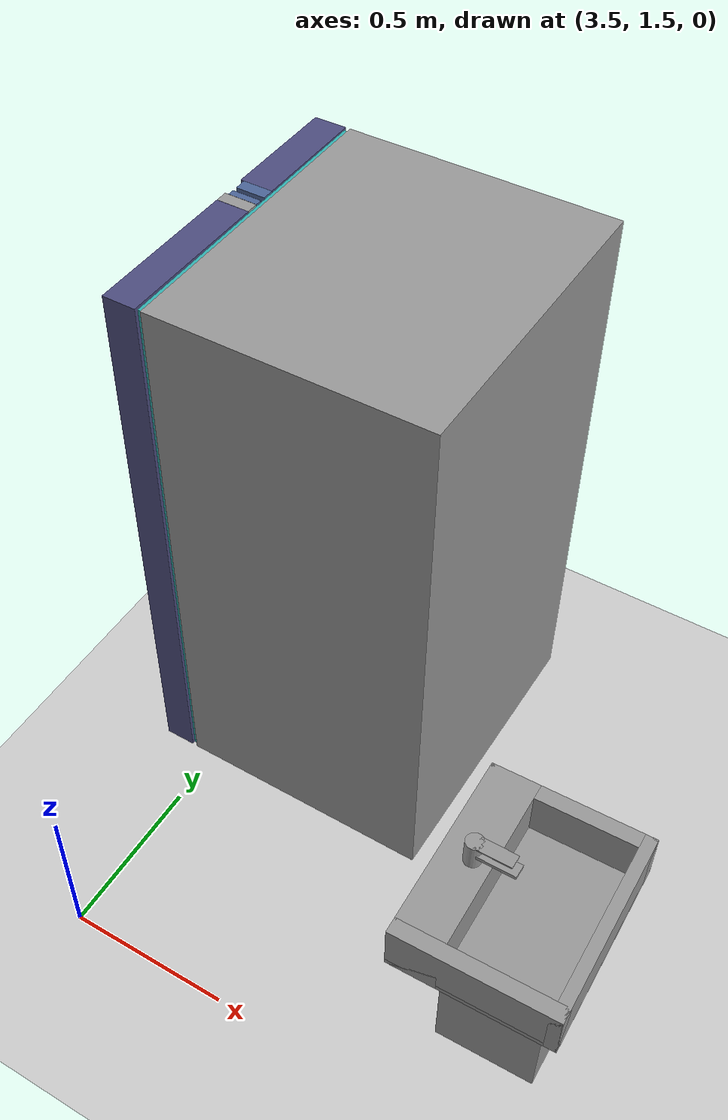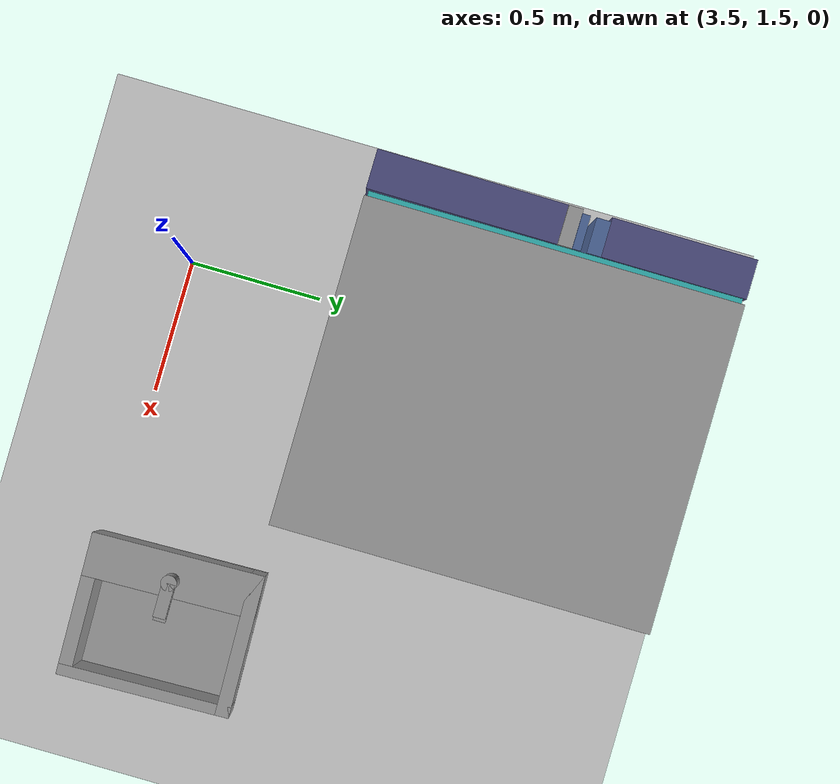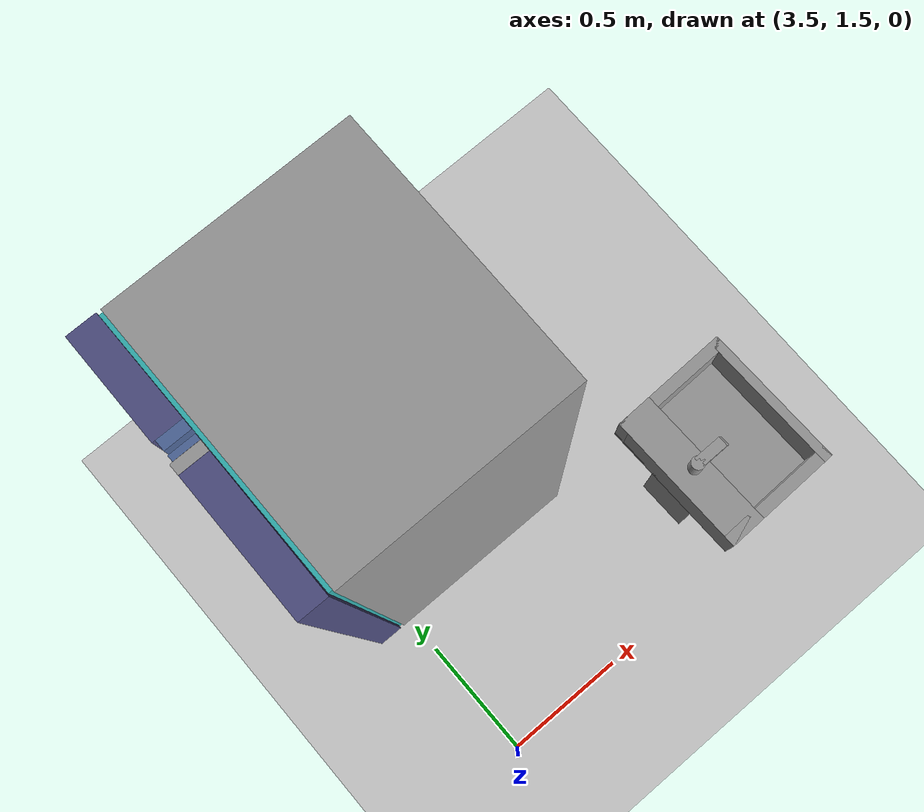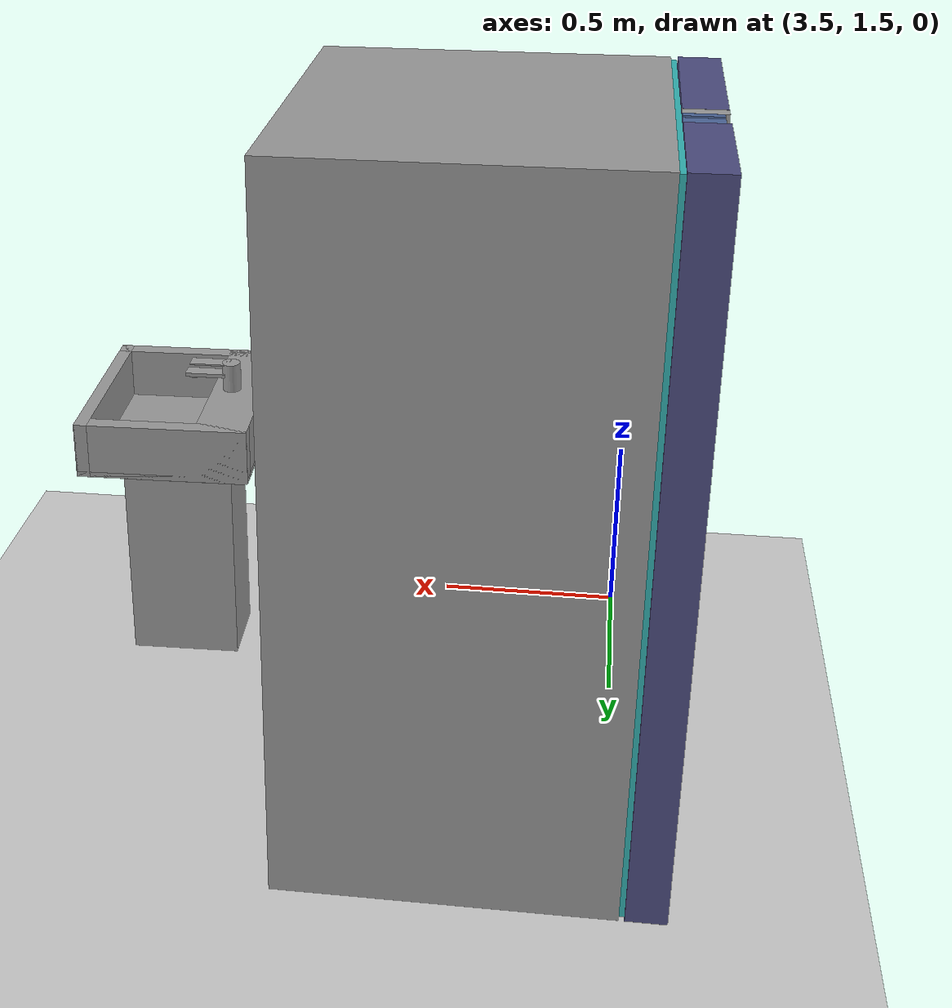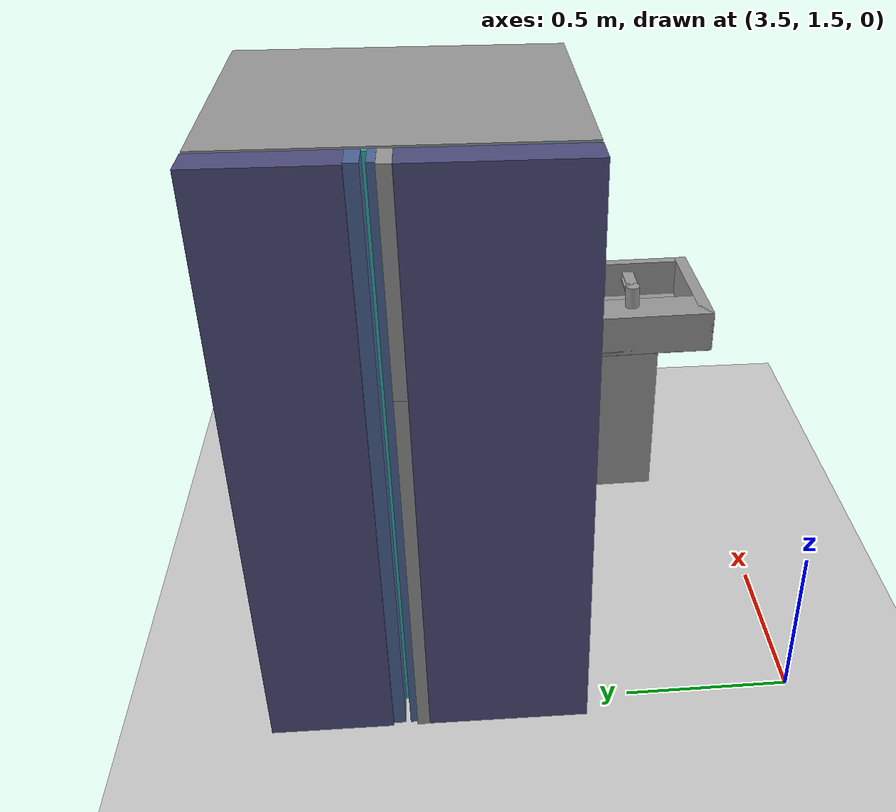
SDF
<sdf version="1.6">
 <world name="default">
  <model name="ground_plane">
   <static>1</static>
   <link name="link">
    <collision name="collision">
     <geometry><plane><normal>0 0 1</normal><size>100 100</size></plane></geometry>
     <surface><friction><ode><mu>100</mu><mu2>50</mu2></ode></friction></surface>
    </collision>
    <visual name="visual">
     <cast_shadows>0</cast_shadows>
     <geometry><plane><normal>0 0 1</normal><size>100 100</size></plane></geometry>
     <material>
      <script><uri>file://media/materials/scripts/gazebo.material</uri><name>Gazebo/Grey</name></script>
     </material>
    </visual>
   </link>
  </model>
  <model name="refrigerator">
   <link name="link_0">
    <pose>0 0.268333 0 0 -0 0</pose>
    <visual name="visual">
     <geometry><box><size>0.915 0.792 1.71</size></box></geometry>
     <material>
      <lighting>1</lighting>
      <script><uri>file://media/materials/scripts/gazebo.material</uri><name>Gazebo/Grey</name></script>
      <ambient>0.3 0.3 0.3 1</ambient>
      <diffuse>0.7 0.7 0.7 1</diffuse>
      <specular>0.01 0.01 0.01 1</specular>
      <emissive>0 0 0 1</emissive>
      <shader type="vertex"><normal_map>__default__</normal_map></shader>
     </material>
    </visual>
    <collision name="collision">
     <geometry><box><size>0.915 0.792 1.71</size></box></geometry>
     <surface>
      <friction>
       <ode><mu>1</mu><mu2>1</mu2><fdir1>0 0 0</fdir1><slip1>0</slip1><slip2>0</slip2></ode>
       <torsional>
        <coefficient>1</coefficient>
        <patch_radius>0</patch_radius>
        <surface_radius>0</surface_radius>
        <use_patch_radius>1</use_patch_radius>
        <ode><slip>0</slip></ode>
       </torsional>
      </friction>
      <bounce><restitution_coefficient>0</restitution_coefficient><threshold>1e+06</threshold></bounce>
      <contact>
       <collide_without_contact>0</collide_without_contact>
       <collide_without_contact_bitmask>1</collide_without_contact_bitmask>
       <collide_bitmask>1</collide_bitmask>
       <ode>
        <soft_cfm>0</soft_cfm>
        <soft_erp>0.2</soft_erp>
        <kp>1e+13</kp>
        <kd>1</kd>
        <max_vel>0.01</max_vel>
        <min_depth>0</min_depth>
       </ode>
       <bullet>
        <split_impulse>1</split_impulse>
        <split_impulse_penetration_threshold>-0.01</split_impulse_penetration_threshold>
        <soft_cfm>0</soft_cfm>
        <soft_erp>0.2</soft_erp>
        <kp>1e+13</kp>
        <kd>1</kd>
       </bullet>
      </contact>
     </surface>
    </collision>
    <inertial>
     <inertia><ixx>1</ixx><ixy>0</ixy><ixz>0</ixz><iyy>1</iyy><iyz>0</iyz><izz>1</izz></inertia>
     <mass>1</mass>
    </inertial>
   </link>
   <link name="link_0_0">
    <pose>-0.28263 -0.188543 0 0 0 -0.002148</pose>
    <visual name="visual">
     <geometry><box><size>0.35 0.095 1.71</size></box></geometry>
     <material>
      <lighting>1</lighting>
      <script><uri>file://media/materials/scripts/gazebo.material</uri><name>Gazebo/Grey</name></script>
      <ambient>0.3 0.3 0.5 1</ambient>
      <diffuse>0.7 0.7 0.7 1</diffuse>
      <specular>0.01 0.01 0.01 1</specular>
      <emissive>0 0 0 1</emissive>
      <shader type="vertex"><normal_map>__default__</normal_map></shader>
     </material>
    </visual>
    <collision name="collision">
     <geometry><box><size>0.35 0.095 1.71</size></box></geometry>
     <surface>
      <friction>
       <ode><mu>1</mu><mu2>1</mu2><fdir1>0 0 0</fdir1><slip1>0</slip1><slip2>0</slip2></ode>
       <torsional>
        <coefficient>1</coefficient>
        <patch_radius>0</patch_radius>
        <surface_radius>0</surface_radius>
        <use_patch_radius>1</use_patch_radius>
        <ode><slip>0</slip></ode>
       </torsional>
      </friction>
      <bounce><restitution_coefficient>0</restitution_coefficient><threshold>1e+06</threshold></bounce>
      <contact>
       <collide_without_contact>0</collide_without_contact>
       <collide_without_contact_bitmask>1</collide_without_contact_bitmask>
       <collide_bitmask>1</collide_bitmask>
       <ode>
        <soft_cfm>0</soft_cfm>
        <soft_erp>0.2</soft_erp>
        <kp>1e+13</kp>
        <kd>1</kd>
        <max_vel>0.01</max_vel>
        <min_depth>0</min_depth>
       </ode>
       <bullet>
        <split_impulse>1</split_impulse>
        <split_impulse_penetration_threshold>-0.01</split_impulse_penetration_threshold>
        <soft_cfm>0</soft_cfm>
        <soft_erp>0.2</soft_erp>
        <kp>1e+13</kp>
        <kd>1</kd>
       </bullet>
      </contact>
     </surface>
    </collision>
    <inertial>
     <inertia><ixx>1</ixx><ixy>0</ixy><ixz>0</ixz><iyy>1</iyy><iyz>0</iyz><izz>1</izz></inertia>
     <mass>1</mass>
    </inertial>
   </link>
   <link name="link_0_0_clone">
    <pose>0.227291 -0.190132 0 0 0 -0.004296</pose>
    <visual name="visual_0">
     <geometry><box><size>0.46 0.095 1.71</size></box></geometry>
     <material>
      <lighting>1</lighting>
      <script><uri>file://media/materials/scripts/gazebo.material</uri><name>Gazebo/Grey</name></script>
      <ambient>0.3 0.3 0.5 1</ambient>
      <diffuse>0.7 0.7 0.7 1</diffuse>
      <specular>0.01 0.01 0.01 1</specular>
      <emissive>0 0 0 1</emissive>
      <shader type="vertex"><normal_map>__default__</normal_map></shader>
     </material>
    </visual>
    <collision name="collision">
     <geometry><box><size>0.46 0.095 1.71</size></box></geometry>
     <surface>
      <friction>
       <ode><mu>1</mu><mu2>1</mu2><fdir1>0 0 0</fdir1><slip1>0</slip1><slip2>0</slip2></ode>
       <torsional>
        <coefficient>1</coefficient>
        <patch_radius>0</patch_radius>
        <surface_radius>0</surface_radius>
        <use_patch_radius>1</use_patch_radius>
        <ode><slip>0</slip></ode>
       </torsional>
      </friction>
      <bounce><restitution_coefficient>0</restitution_coefficient><threshold>1e+06</threshold></bounce>
      <contact>
       <collide_without_contact>0</collide_without_contact>
       <collide_without_contact_bitmask>1</collide_without_contact_bitmask>
       <collide_bitmask>1</collide_bitmask>
       <ode>
        <soft_cfm>0</soft_cfm>
        <soft_erp>0.2</soft_erp>
        <kp>1e+13</kp>
        <kd>1</kd>
        <max_vel>0.01</max_vel>
        <min_depth>0</min_depth>
       </ode>
       <bullet>
        <split_impulse>1</split_impulse>
        <split_impulse_penetration_threshold>-0.01</split_impulse_penetration_threshold>
        <soft_cfm>0</soft_cfm>
        <soft_erp>0.2</soft_erp>
        <kp>1e+13</kp>
        <kd>1</kd>
       </bullet>
      </contact>
     </surface>
    </collision>
    <inertial>
     <inertia><ixx>1</ixx><ixy>0</ixy><ixz>0</ixz><iyy>1</iyy><iyz>0</iyz><izz>1</izz></inertia>
     <mass>1</mass>
    </inertial>
   </link>
   <link name="link_0_0_clone_clone">
    <pose>-0.020514 -0.1896 -0.295 0 0 -0.006444</pose>
    <visual name="visual_0">
     <geometry><box><size>0.035 0.095 1.12</size></box></geometry>
     <material>
      <lighting>1</lighting>
      <script><uri>file://media/materials/scripts/gazebo.material</uri><name>Gazebo/Grey</name></script>
      <ambient>0.3 0.3 0.3 1</ambient>
      <diffuse>0.7 0.7 0.7 1</diffuse>
      <specular>0.01 0.01 0.01 1</specular>
      <emissive>0 0 0 1</emissive>
      <shader type="vertex"><normal_map>__default__</normal_map></shader>
     </material>
    </visual>
    <collision name="collision">
     <geometry><box><size>0.035 0.095 1.12</size></box></geometry>
     <surface>
      <friction>
       <ode><mu>1</mu><mu2>1</mu2><fdir1>0 0 0</fdir1><slip1>0</slip1><slip2>0</slip2></ode>
       <torsional>
        <coefficient>1</coefficient>
        <patch_radius>0</patch_radius>
        <surface_radius>0</surface_radius>
        <use_patch_radius>1</use_patch_radius>
        <ode><slip>0</slip></ode>
       </torsional>
      </friction>
      <bounce><restitution_coefficient>0</restitution_coefficient><threshold>1e+06</threshold></bounce>
      <contact>
       <collide_without_contact>0</collide_without_contact>
       <collide_without_contact_bitmask>1</collide_without_contact_bitmask>
       <collide_bitmask>1</collide_bitmask>
       <ode>
        <soft_cfm>0</soft_cfm>
        <soft_erp>0.2</soft_erp>
        <kp>1e+13</kp>
        <kd>1</kd>
        <max_vel>0.01</max_vel>
        <min_depth>0</min_depth>
       </ode>
       <bullet>
        <split_impulse>1</split_impulse>
        <split_impulse_penetration_threshold>-0.01</split_impulse_penetration_threshold>
        <soft_cfm>0</soft_cfm>
        <soft_erp>0.2</soft_erp>
        <kp>1e+13</kp>
        <kd>1</kd>
       </bullet>
      </contact>
     </surface>
    </collision>
    <inertial>
     <inertia><ixx>1</ixx><ixy>0</ixy><ixz>0</ixz><iyy>1</iyy><iyz>0</iyz><izz>1</izz></inertia>
     <mass>1</mass>
    </inertial>
   </link>
   <link name="link_0_0_clone_clone_clone">
    <pose>-0.020615 -0.189218 0.56 0 0 -0.008592</pose>
    <visual name="visual_0">
     <geometry><box><size>0.035 0.095 0.59</size></box></geometry>
     <material>
      <lighting>1</lighting>
      <script><uri>file://media/materials/scripts/gazebo.material</uri><name>Gazebo/Grey</name></script>
      <ambient>0.3 0.3 0.3 1</ambient>
      <diffuse>0.7 0.7 0.7 1</diffuse>
      <specular>0.01 0.01 0.01 1</specular>
      <emissive>0 0 0 1</emissive>
      <shader type="vertex"><normal_map>__default__</normal_map></shader>
     </material>
    </visual>
    <collision name="collision">
     <geometry><box><size>0.035 0.095 0.59</size></box></geometry>
     <surface>
      <friction>
       <ode><mu>1</mu><mu2>1</mu2><fdir1>0 0 0</fdir1><slip1>0</slip1><slip2>0</slip2></ode>
       <torsional>
        <coefficient>1</coefficient>
        <patch_radius>0</patch_radius>
        <surface_radius>0</surface_radius>
        <use_patch_radius>1</use_patch_radius>
        <ode><slip>0</slip></ode>
       </torsional>
      </friction>
      <bounce><restitution_coefficient>0</restitution_coefficient><threshold>1e+06</threshold></bounce>
      <contact>
       <collide_without_contact>0</collide_without_contact>
       <collide_without_contact_bitmask>1</collide_without_contact_bitmask>
       <collide_bitmask>1</collide_bitmask>
       <ode>
        <soft_cfm>0</soft_cfm>
        <soft_erp>0.2</soft_erp>
        <kp>1e+13</kp>
        <kd>1</kd>
        <max_vel>0.01</max_vel>
        <min_depth>0</min_depth>
       </ode>
       <bullet>
        <split_impulse>1</split_impulse>
        <split_impulse_penetration_threshold>-0.01</split_impulse_penetration_threshold>
        <soft_cfm>0</soft_cfm>
        <soft_erp>0.2</soft_erp>
        <kp>1e+13</kp>
        <kd>1</kd>
       </bullet>
      </contact>
     </surface>
    </collision>
    <inertial>
     <inertia><ixx>1</ixx><ixy>0</ixy><ixz>0</ixz><iyy>1</iyy><iyz>0</iyz><izz>1</izz></inertia>
     <mass>1</mass>
    </inertial>
   </link>
   <link name="link_1">
    <pose>0 -0.134167 0 0 -0 0</pose>
    <visual name="visual">
     <geometry><box><size>0.9 0.013 1.7</size></box></geometry>
     <material>
      <lighting>1</lighting>
      <script><uri>file://media/materials/scripts/gazebo.material</uri><name>Gazebo/Grey</name></script>
      <ambient>0 0.3 0.3 1</ambient>
      <diffuse>0.2 0.7 0.7 1</diffuse>
      <specular>0.01 0.01 0.01 1</specular>
      <emissive>0 0 0 1</emissive>
      <shader type="vertex"><normal_map>__default__</normal_map></shader>
     </material>
    </visual>
    <collision name="collision">
     <geometry><box><size>0.9 0.013 1.7</size></box></geometry>
     <surface>
      <friction>
       <ode><mu>1</mu><mu2>1</mu2><fdir1>0 0 0</fdir1><slip1>0</slip1><slip2>0</slip2></ode>
       <torsional>
        <coefficient>1</coefficient>
        <patch_radius>0</patch_radius>
        <surface_radius>0</surface_radius>
        <use_patch_radius>1</use_patch_radius>
        <ode><slip>0</slip></ode>
       </torsional>
      </friction>
      <bounce><restitution_coefficient>0</restitution_coefficient><threshold>1e+06</threshold></bounce>
      <contact>
       <collide_without_contact>0</collide_without_contact>
       <collide_without_contact_bitmask>1</collide_without_contact_bitmask>
       <collide_bitmask>1</collide_bitmask>
       <ode>
        <soft_cfm>0</soft_cfm>
        <soft_erp>0.2</soft_erp>
        <kp>1e+13</kp>
        <kd>1</kd>
        <max_vel>0.01</max_vel>
        <min_depth>0</min_depth>
       </ode>
       <bullet>
        <split_impulse>1</split_impulse>
        <split_impulse_penetration_threshold>-0.01</split_impulse_penetration_threshold>
        <soft_cfm>0</soft_cfm>
        <soft_erp>0.2</soft_erp>
        <kp>1e+13</kp>
        <kd>1</kd>
       </bullet>
      </contact>
     </surface>
    </collision>
    <inertial>
     <inertia><ixx>1</ixx><ixy>0</ixy><ixz>0</ixz><iyy>1</iyy><iyz>0</iyz><izz>1</izz></inertia>
     <mass>1</mass>
    </inertial>
   </link>
   <link name="link_1_0">
    <pose>-0.090119 -0.183956 0 0 0 -0.002148</pose>
    <visual name="visual">
     <geometry><box><size>0.035 0.085 1.71</size></box></geometry>
     <material>
      <lighting>1</lighting>
      <script><uri>file://media/materials/scripts/gazebo.material</uri><name>Gazebo/Grey</name></script>
      <ambient>0.3 0.4 0.6 1</ambient>
      <diffuse>0.7 0.7 0.7 1</diffuse>
      <specular>0.01 0.01 0.01 1</specular>
      <emissive>0 0 0 1</emissive>
      <shader type="vertex"><normal_map>__default__</normal_map></shader>
     </material>
    </visual>
    <collision name="collision">
     <geometry><box><size>0.035 0.085 1.71</size></box></geometry>
     <surface>
      <friction>
       <ode><mu>1</mu><mu2>1</mu2><fdir1>0 0 0</fdir1><slip1>0</slip1><slip2>0</slip2></ode>
       <torsional>
        <coefficient>1</coefficient>
        <patch_radius>0</patch_radius>
        <surface_radius>0</surface_radius>
        <use_patch_radius>1</use_patch_radius>
        <ode><slip>0</slip></ode>
       </torsional>
      </friction>
      <bounce><restitution_coefficient>0</restitution_coefficient><threshold>1e+06</threshold></bounce>
      <contact>
       <collide_without_contact>0</collide_without_contact>
       <collide_without_contact_bitmask>1</collide_without_contact_bitmask>
       <collide_bitmask>1</collide_bitmask>
       <ode>
        <soft_cfm>0</soft_cfm>
        <soft_erp>0.2</soft_erp>
        <kp>1e+13</kp>
        <kd>1</kd>
        <max_vel>0.01</max_vel>
        <min_depth>0</min_depth>
       </ode>
       <bullet>
        <split_impulse>1</split_impulse>
        <split_impulse_penetration_threshold>-0.01</split_impulse_penetration_threshold>
        <soft_cfm>0</soft_cfm>
        <soft_erp>0.2</soft_erp>
        <kp>1e+13</kp>
        <kd>1</kd>
       </bullet>
      </contact>
     </surface>
    </collision>
    <inertial>
     <inertia><ixx>1</ixx><ixy>0</ixy><ixz>0</ixz><iyy>1</iyy><iyz>0</iyz><izz>1</izz></inertia>
     <mass>1</mass>
    </inertial>
   </link>
   <link name="link_1_0_clone">
    <pose>-0.048502 -0.184067 0 0 0 -0.004296</pose>
    <visual name="visual_0">
     <geometry><box><size>0.02 0.085 1.71</size></box></geometry>
     <material>
      <lighting>1</lighting>
      <script><uri>file://media/materials/scripts/gazebo.material</uri><name>Gazebo/Grey</name></script>
      <ambient>0.3 0.4 0.6 1</ambient>
      <diffuse>0.7 0.7 0.7 1</diffuse>
      <specular>0.01 0.01 0.01 1</specular>
      <emissive>0 0 0 1</emissive>
      <shader type="vertex"><normal_map>__default__</normal_map></shader>
     </material>
    </visual>
    <collision name="collision">
     <geometry><box><size>0.02 0.085 1.71</size></box></geometry>
     <surface>
      <friction>
       <ode><mu>1</mu><mu2>1</mu2><fdir1>0 0 0</fdir1><slip1>0</slip1><slip2>0</slip2></ode>
       <torsional>
        <coefficient>1</coefficient>
        <patch_radius>0</patch_radius>
        <surface_radius>0</surface_radius>
        <use_patch_radius>1</use_patch_radius>
        <ode><slip>0</slip></ode>
       </torsional>
      </friction>
      <bounce><restitution_coefficient>0</restitution_coefficient><threshold>1e+06</threshold></bounce>
      <contact>
       <collide_without_contact>0</collide_without_contact>
       <collide_without_contact_bitmask>1</collide_without_contact_bitmask>
       <collide_bitmask>1</collide_bitmask>
       <ode>
        <soft_cfm>0</soft_cfm>
        <soft_erp>0.2</soft_erp>
        <kp>1e+13</kp>
        <kd>1</kd>
        <max_vel>0.01</max_vel>
        <min_depth>0</min_depth>
       </ode>
       <bullet>
        <split_impulse>1</split_impulse>
        <split_impulse_penetration_threshold>-0.01</split_impulse_penetration_threshold>
        <soft_cfm>0</soft_cfm>
        <soft_erp>0.2</soft_erp>
        <kp>1e+13</kp>
        <kd>1</kd>
       </bullet>
      </contact>
     </surface>
    </collision>
    <inertial>
     <inertia><ixx>1</ixx><ixy>0</ixy><ixz>0</ixz><iyy>1</iyy><iyz>0</iyz><izz>1</izz></inertia>
     <mass>1</mass>
    </inertial>
   </link>
   <joint name="link_0_0_JOINT_5" type="fixed">
    <parent>link_0_0</parent>
    <child>link_1_0</child>
    <physics>
     <ode><limit><cfm>0</cfm><erp>0.2</erp></limit><suspension><cfm>0</cfm><erp>0.2</erp></suspension></ode>
    </physics>
   </joint>
   <joint name="link_0_0_clone_JOINT_6" type="fixed">
    <parent>link_0_0_clone</parent>
    <child>link_0_0_clone_clone_clone</child>
    <physics>
     <ode><limit><cfm>0</cfm><erp>0.2</erp></limit><suspension><cfm>0</cfm><erp>0.2</erp></suspension></ode>
    </physics>
   </joint>
   <joint name="link_0_0_clone_JOINT_7" type="fixed">
    <parent>link_0_0_clone</parent>
    <child>link_0_0_clone_clone</child>
    <physics>
     <ode><limit><cfm>0</cfm><erp>0.2</erp></limit><suspension><cfm>0</cfm><erp>0.2</erp></suspension></ode>
    </physics>
   </joint>
   <joint name="link_0_0_clone_clone_clone_JOINT_9" type="fixed">
    <parent>link_0_0_clone_clone_clone</parent>
    <child>link_1_0_clone</child>
    <physics>
     <ode><limit><cfm>0</cfm><erp>0.2</erp></limit><suspension><cfm>0</cfm><erp>0.2</erp></suspension></ode>
    </physics>
   </joint>
   <joint name="link_0_JOINT_0" type="fixed">
    <parent>link_0</parent>
    <child>link_1</child>
    <physics>
     <ode><limit><cfm>0</cfm><erp>0.2</erp></limit><suspension><cfm>0</cfm><erp>0.2</erp></suspension></ode>
    </physics>
   </joint>
   <joint name="link_1_JOINT_3" type="fixed">
    <parent>link_1</parent>
    <child>link_0_0</child>
    <physics>
     <ode><limit><cfm>0</cfm><erp>0.2</erp></limit><suspension><cfm>0</cfm><erp>0.2</erp></suspension></ode>
    </physics>
   </joint>
   <joint name="link_1_JOINT_4" type="fixed">
    <parent>link_1</parent>
    <child>link_0_0_clone</child>
    <physics>
     <ode><limit><cfm>0</cfm><erp>0.2</erp></limit><suspension><cfm>0</cfm><erp>0.2</erp></suspension></ode>
    </physics>
   </joint>
   <static>0</static>
   <pose>3.59754 2.60343 0.935003 8e-06 1e-06 -1.57252</pose>
  </model>
  <model name="basin_2_1">
   <link name="link_0">
    <pose>0 0.00875 -0.31375 0 -0 0</pose>
    <visual name="ModelPreview_0::link_0::visual_4">
     <geometry><box><size>0.21 0.3 0.63</size></box></geometry>
     <material>
      <lighting>1</lighting>
      <script><uri>file://media/materials/scripts/gazebo.material</uri><name>Gazebo/Grey</name></script>
      <ambient>0.3 0.3 0.3 1</ambient>
      <diffuse>0.7 0.7 0.7 1</diffuse>
      <specular>0.01 0.01 0.01 1</specular>
      <emissive>0 0 0 1</emissive>
      <shader type="vertex"><normal_map>__default__</normal_map></shader>
     </material>
    </visual>
    <visual name="ModelPreview_0::link_0::visual_5">
     <geometry><box><size>0.21 0.3 0.63</size></box></geometry>
     <material>
      <lighting>1</lighting>
      <script><uri>file://media/materials/scripts/gazebo.material</uri><name>Gazebo/Grey</name></script>
      <ambient>0.3 0.3 0.3 1</ambient>
      <diffuse>0.7 0.7 0.7 1</diffuse>
      <specular>0.01 0.01 1 1</specular>
      <emissive>0 0 0 1</emissive>
      <shader type="vertex"><normal_map>__default__</normal_map></shader>
     </material>
    </visual>
    <visual name="visual">
     <geometry><box><size>0.21 0.3 0.63</size></box></geometry>
     <material>
      <lighting>1</lighting>
      <script><uri>file://media/materials/scripts/gazebo.material</uri><name>Gazebo/Grey</name></script>
      <ambient>0.3 0.3 0.3 1</ambient>
      <diffuse>0.7 0.7 0.7 1</diffuse>
      <specular>0.01 1 1 1</specular>
      <emissive>0 0 0 1</emissive>
      <shader type="vertex"><normal_map>__default__</normal_map></shader>
     </material>
    </visual>
    <collision name="collision">
     <geometry><box><size>0.21 0.3 0.63</size></box></geometry>
     <surface>
      <friction>
       <ode><mu>1</mu><mu2>1</mu2><fdir1>0 0 0</fdir1><slip1>0</slip1><slip2>0</slip2></ode>
       <torsional>
        <coefficient>1</coefficient>
        <patch_radius>0</patch_radius>
        <surface_radius>0</surface_radius>
        <use_patch_radius>1</use_patch_radius>
        <ode><slip>0</slip></ode>
       </torsional>
      </friction>
      <bounce><restitution_coefficient>0</restitution_coefficient><threshold>1e+06</threshold></bounce>
      <contact>
       <collide_without_contact>0</collide_without_contact>
       <collide_without_contact_bitmask>1</collide_without_contact_bitmask>
       <collide_bitmask>1</collide_bitmask>
       <ode>
        <soft_cfm>0</soft_cfm>
        <soft_erp>0.2</soft_erp>
        <kp>1e+13</kp>
        <kd>1</kd>
        <max_vel>0.01</max_vel>
        <min_depth>0</min_depth>
       </ode>
       <bullet>
        <split_impulse>1</split_impulse>
        <split_impulse_penetration_threshold>-0.01</split_impulse_penetration_threshold>
        <soft_cfm>0</soft_cfm>
        <soft_erp>0.2</soft_erp>
        <kp>1e+13</kp>
        <kd>1</kd>
       </bullet>
      </contact>
     </surface>
    </collision>
    <inertial>
     <inertia><ixx>1</ixx><ixy>0</ixy><ixz>0</ixz><iyy>1</iyy><iyz>0</iyz><izz>1</izz></inertia>
     <mass>1</mass>
    </inertial>
   </link>
   <link name="link_1">
    <pose>0 0.00875 0.00875 0 -0 0</pose>
    <visual name="visual">
     <geometry><box><size>0.56 0.46 0.015</size></box></geometry>
     <material>
      <lighting>1</lighting>
      <script><uri>file://media/materials/scripts/gazebo.material</uri><name>Gazebo/Grey</name></script>
      <ambient>0.3 0.3 0.3 1</ambient>
      <diffuse>0.7 0.7 0.7 1</diffuse>
      <specular>0.01 1 1 1</specular>
      <emissive>0 0 0 1</emissive>
      <shader type="vertex"><normal_map>__default__</normal_map></shader>
     </material>
    </visual>
    <collision name="collision">
     <geometry><box><size>0.56 0.46 0.015</size></box></geometry>
     <surface>
      <friction>
       <ode><mu>1</mu><mu2>1</mu2><fdir1>0 0 0</fdir1><slip1>0</slip1><slip2>0</slip2></ode>
       <torsional>
        <coefficient>1</coefficient>
        <patch_radius>0</patch_radius>
        <surface_radius>0</surface_radius>
        <use_patch_radius>1</use_patch_radius>
        <ode><slip>0</slip></ode>
       </torsional>
      </friction>
      <bounce><restitution_coefficient>0</restitution_coefficient><threshold>1e+06</threshold></bounce>
      <contact>
       <collide_without_contact>0</collide_without_contact>
       <collide_without_contact_bitmask>1</collide_without_contact_bitmask>
       <collide_bitmask>1</collide_bitmask>
       <ode>
        <soft_cfm>0</soft_cfm>
        <soft_erp>0.2</soft_erp>
        <kp>1e+13</kp>
        <kd>1</kd>
        <max_vel>0.01</max_vel>
        <min_depth>0</min_depth>
       </ode>
       <bullet>
        <split_impulse>1</split_impulse>
        <split_impulse_penetration_threshold>-0.01</split_impulse_penetration_threshold>
        <soft_cfm>0</soft_cfm>
        <soft_erp>0.2</soft_erp>
        <kp>1e+13</kp>
        <kd>1</kd>
       </bullet>
      </contact>
     </surface>
    </collision>
    <inertial>
     <inertia><ixx>1</ixx><ixy>0</ixy><ixz>0</ixz><iyy>1</iyy><iyz>0</iyz><izz>1</izz></inertia>
     <mass>1</mass>
    </inertial>
   </link>
   <link name="link_2">
    <pose>-0.2575 0.00875 0.07625 0 -0 0</pose>
    <visual name="visual">
     <geometry><box><size>0.045 0.46 0.15</size></box></geometry>
     <material>
      <lighting>1</lighting>
      <script><uri>file://media/materials/scripts/gazebo.material</uri><name>Gazebo/Grey</name></script>
      <ambient>0.3 0.3 0.3 1</ambient>
      <diffuse>0.7 0.7 0.7 1</diffuse>
      <specular>0.01 1 1 1</specular>
      <emissive>0 0 0 1</emissive>
      <shader type="vertex"><normal_map>__default__</normal_map></shader>
     </material>
    </visual>
    <collision name="collision">
     <geometry><box><size>0.045 0.46 0.15</size></box></geometry>
     <surface>
      <friction>
       <ode><mu>1</mu><mu2>1</mu2><fdir1>0 0 0</fdir1><slip1>0</slip1><slip2>0</slip2></ode>
       <torsional>
        <coefficient>1</coefficient>
        <patch_radius>0</patch_radius>
        <surface_radius>0</surface_radius>
        <use_patch_radius>1</use_patch_radius>
        <ode><slip>0</slip></ode>
       </torsional>
      </friction>
      <bounce><restitution_coefficient>0</restitution_coefficient><threshold>1e+06</threshold></bounce>
      <contact>
       <collide_without_contact>0</collide_without_contact>
       <collide_without_contact_bitmask>1</collide_without_contact_bitmask>
       <collide_bitmask>1</collide_bitmask>
       <ode>
        <soft_cfm>0</soft_cfm>
        <soft_erp>0.2</soft_erp>
        <kp>1e+13</kp>
        <kd>1</kd>
        <max_vel>0.01</max_vel>
        <min_depth>0</min_depth>
       </ode>
       <bullet>
        <split_impulse>1</split_impulse>
        <split_impulse_penetration_threshold>-0.01</split_impulse_penetration_threshold>
        <soft_cfm>0</soft_cfm>
        <soft_erp>0.2</soft_erp>
        <kp>1e+13</kp>
        <kd>1</kd>
       </bullet>
      </contact>
     </surface>
    </collision>
    <inertial>
     <inertia><ixx>1</ixx><ixy>0</ixy><ixz>0</ixz><iyy>1</iyy><iyz>0</iyz><izz>1</izz></inertia>
     <mass>1</mass>
    </inertial>
   </link>
   <link name="link_2_clone">
    <pose>0.2575 0.00875 0.07625 0 -0 0</pose>
    <visual name="visual">
     <geometry><box><size>0.045 0.46 0.15</size></box></geometry>
     <material>
      <lighting>1</lighting>
      <script><uri>file://media/materials/scripts/gazebo.material</uri><name>Gazebo/Grey</name></script>
      <ambient>0.3 0.3 0.3 1</ambient>
      <diffuse>0.7 0.7 0.7 1</diffuse>
      <specular>0.01 1 1 1</specular>
      <emissive>0 0 0 1</emissive>
      <shader type="vertex"><normal_map>__default__</normal_map></shader>
     </material>
    </visual>
    <collision name="collision">
     <geometry><box><size>0.045 0.46 0.15</size></box></geometry>
     <surface>
      <friction>
       <ode><mu>1</mu><mu2>1</mu2><fdir1>0 0 0</fdir1><slip1>0</slip1><slip2>0</slip2></ode>
       <torsional>
        <coefficient>1</coefficient>
        <patch_radius>0</patch_radius>
        <surface_radius>0</surface_radius>
        <use_patch_radius>1</use_patch_radius>
        <ode><slip>0</slip></ode>
       </torsional>
      </friction>
      <bounce><restitution_coefficient>0</restitution_coefficient><threshold>1e+06</threshold></bounce>
      <contact>
       <collide_without_contact>0</collide_without_contact>
       <collide_without_contact_bitmask>1</collide_without_contact_bitmask>
       <collide_bitmask>1</collide_bitmask>
       <ode>
        <soft_cfm>0</soft_cfm>
        <soft_erp>0.2</soft_erp>
        <kp>1e+13</kp>
        <kd>1</kd>
        <max_vel>0.01</max_vel>
        <min_depth>0</min_depth>
       </ode>
       <bullet>
        <split_impulse>1</split_impulse>
        <split_impulse_penetration_threshold>-0.01</split_impulse_penetration_threshold>
        <soft_cfm>0</soft_cfm>
        <soft_erp>0.2</soft_erp>
        <kp>1e+13</kp>
        <kd>1</kd>
       </bullet>
      </contact>
     </surface>
    </collision>
    <inertial>
     <inertia><ixx>1</ixx><ixy>0</ixy><ixz>0</ixz><iyy>1</iyy><iyz>0</iyz><izz>1</izz></inertia>
     <mass>1</mass>
    </inertial>
   </link>
   <link name="link_2_clone_0">
    <pose>0 0.16875 0.07625 0 -0 0</pose>
    <visual name="visual">
     <geometry><box><size>0.56 0.14 0.15</size></box></geometry>
     <material>
      <lighting>1</lighting>
      <script><uri>file://media/materials/scripts/gazebo.material</uri><name>Gazebo/Grey</name></script>
      <ambient>0.3 0.3 0.3 1</ambient>
      <diffuse>0.7 0.7 0.7 1</diffuse>
      <specular>0.01 1 1 1</specular>
      <emissive>0 0 0 1</emissive>
      <shader type="vertex"><normal_map>__default__</normal_map></shader>
     </material>
    </visual>
    <collision name="collision">
     <geometry><box><size>0.56 0.14 0.15</size></box></geometry>
     <surface>
      <friction>
       <ode><mu>1</mu><mu2>1</mu2><fdir1>0 0 0</fdir1><slip1>0</slip1><slip2>0</slip2></ode>
       <torsional>
        <coefficient>1</coefficient>
        <patch_radius>0</patch_radius>
        <surface_radius>0</surface_radius>
        <use_patch_radius>1</use_patch_radius>
        <ode><slip>0</slip></ode>
       </torsional>
      </friction>
      <bounce><restitution_coefficient>0</restitution_coefficient><threshold>1e+06</threshold></bounce>
      <contact>
       <collide_without_contact>0</collide_without_contact>
       <collide_without_contact_bitmask>1</collide_without_contact_bitmask>
       <collide_bitmask>1</collide_bitmask>
       <ode>
        <soft_cfm>0</soft_cfm>
        <soft_erp>0.2</soft_erp>
        <kp>1e+13</kp>
        <kd>1</kd>
        <max_vel>0.01</max_vel>
        <min_depth>0</min_depth>
       </ode>
       <bullet>
        <split_impulse>1</split_impulse>
        <split_impulse_penetration_threshold>-0.01</split_impulse_penetration_threshold>
        <soft_cfm>0</soft_cfm>
        <soft_erp>0.2</soft_erp>
        <kp>1e+13</kp>
        <kd>1</kd>
       </bullet>
      </contact>
     </surface>
    </collision>
    <inertial>
     <inertia><ixx>1</ixx><ixy>0</ixy><ixz>0</ixz><iyy>1</iyy><iyz>0</iyz><izz>1</izz></inertia>
     <mass>1</mass>
    </inertial>
   </link>
   <link name="link_2_clone_0_clone">
    <pose>0 -0.20375 0.07625 0 -0 0</pose>
    <visual name="visual">
     <geometry><box><size>0.56 0.035 0.15</size></box></geometry>
     <material>
      <lighting>1</lighting>
      <script><uri>file://media/materials/scripts/gazebo.material</uri><name>Gazebo/Grey</name></script>
      <ambient>0.3 0.3 0.3 1</ambient>
      <diffuse>0.7 0.7 0.7 1</diffuse>
      <specular>0.01 1 1 1</specular>
      <emissive>0 0 0 1</emissive>
      <shader type="vertex"><normal_map>__default__</normal_map></shader>
     </material>
    </visual>
    <collision name="collision">
     <geometry><box><size>0.56 0.035 0.15</size></box></geometry>
     <surface>
      <friction>
       <ode><mu>1</mu><mu2>1</mu2><fdir1>0 0 0</fdir1><slip1>0</slip1><slip2>0</slip2></ode>
       <torsional>
        <coefficient>1</coefficient>
        <patch_radius>0</patch_radius>
        <surface_radius>0</surface_radius>
        <use_patch_radius>1</use_patch_radius>
        <ode><slip>0</slip></ode>
       </torsional>
      </friction>
      <bounce><restitution_coefficient>0</restitution_coefficient><threshold>1e+06</threshold></bounce>
      <contact>
       <collide_without_contact>0</collide_without_contact>
       <collide_without_contact_bitmask>1</collide_without_contact_bitmask>
       <collide_bitmask>1</collide_bitmask>
       <ode>
        <soft_cfm>0</soft_cfm>
        <soft_erp>0.2</soft_erp>
        <kp>1e+13</kp>
        <kd>1</kd>
        <max_vel>0.01</max_vel>
        <min_depth>0</min_depth>
       </ode>
       <bullet>
        <split_impulse>1</split_impulse>
        <split_impulse_penetration_threshold>-0.01</split_impulse_penetration_threshold>
        <soft_cfm>0</soft_cfm>
        <soft_erp>0.2</soft_erp>
        <kp>1e+13</kp>
        <kd>1</kd>
       </bullet>
      </contact>
     </surface>
    </collision>
    <inertial>
     <inertia><ixx>1</ixx><ixy>0</ixy><ixz>0</ixz><iyy>1</iyy><iyz>0</iyz><izz>1</izz></inertia>
     <mass>1</mass>
    </inertial>
   </link>
   <model name="faucet">
    <link name="link_12">
     <pose>0.036877 0 -0.013812 0 -0 0</pose>
     <visual name="visual">
      <geometry><cylinder><radius>0.025</radius><length>0.089</length></cylinder></geometry>
      <material>
       <lighting>1</lighting>
       <script><uri>file://media/materials/scripts/gazebo.material</uri><name>Gazebo/Grey</name></script>
       <ambient>0.3 0.3 0.3 1</ambient>
       <diffuse>0.7 0.7 0.7 1</diffuse>
       <specular>0.01 0.01 0.01 1</specular>
       <emissive>0 0 0 1</emissive>
       <shader type="vertex"><normal_map>__default__</normal_map></shader>
      </material>
     </visual>
     <collision name="collision">
      <geometry><cylinder><radius>0.025</radius><length>0.089</length></cylinder></geometry>
      <surface>
       <friction>
        <ode><mu>1</mu><mu2>1</mu2><fdir1>0 0 0</fdir1><slip1>0</slip1><slip2>0</slip2></ode>
        <torsional>
         <coefficient>1</coefficient>
         <patch_radius>0</patch_radius>
         <surface_radius>0</surface_radius>
         <use_patch_radius>1</use_patch_radius>
         <ode><slip>0</slip></ode>
        </torsional>
       </friction>
       <bounce><restitution_coefficient>0</restitution_coefficient><threshold>1e+06</threshold></bounce>
       <contact>
        <collide_without_contact>0</collide_without_contact>
        <collide_without_contact_bitmask>1</collide_without_contact_bitmask>
        <collide_bitmask>1</collide_bitmask>
        <ode>
         <soft_cfm>0</soft_cfm>
         <soft_erp>0.2</soft_erp>
         <kp>1e+13</kp>
         <kd>1</kd>
         <max_vel>0.01</max_vel>
         <min_depth>0</min_depth>
        </ode>
        <bullet>
         <split_impulse>1</split_impulse>
         <split_impulse_penetration_threshold>-0.01</split_impulse_penetration_threshold>
         <soft_cfm>0</soft_cfm>
         <soft_erp>0.2</soft_erp>
         <kp>1e+13</kp>
         <kd>1</kd>
        </bullet>
       </contact>
      </surface>
     </collision>
     <inertial>
      <inertia><ixx>1</ixx><ixy>0</ixy><ixz>0</ixz><iyy>1</iyy><iyz>0</iyz><izz>1</izz></inertia>
      <mass>1</mass>
     </inertial>
    </link>
    <link name="link_13">
     <pose>-0.019042 0 0.028688 0 -0 0</pose>
     <visual name="visual">
      <geometry><box><size>0.11 0.04 0.004</size></box></geometry>
      <material>
       <lighting>1</lighting>
       <script><uri>file://media/materials/scripts/gazebo.material</uri><name>Gazebo/Grey</name></script>
       <ambient>0.3 0.3 0.3 1</ambient>
       <diffuse>0.7 0.7 0.7 1</diffuse>
       <specular>0.01 0.01 0.01 1</specular>
       <emissive>0 0 0 1</emissive>
       <shader type="vertex"><normal_map>__default__</normal_map></shader>
      </material>
     </visual>
     <collision name="collision">
      <geometry><box><size>0.11 0.04 0.004</size></box></geometry>
      <surface>
       <friction>
        <ode><mu>1</mu><mu2>1</mu2><fdir1>0 0 0</fdir1><slip1>0</slip1><slip2>0</slip2></ode>
        <torsional>
         <coefficient>1</coefficient>
         <patch_radius>0</patch_radius>
         <surface_radius>0</surface_radius>
         <use_patch_radius>1</use_patch_radius>
         <ode><slip>0</slip></ode>
        </torsional>
       </friction>
       <bounce><restitution_coefficient>0</restitution_coefficient><threshold>1e+06</threshold></bounce>
       <contact>
        <collide_without_contact>0</collide_without_contact>
        <collide_without_contact_bitmask>1</collide_without_contact_bitmask>
        <collide_bitmask>1</collide_bitmask>
        <ode>
         <soft_cfm>0</soft_cfm>
         <soft_erp>0.2</soft_erp>
         <kp>1e+13</kp>
         <kd>1</kd>
         <max_vel>0.01</max_vel>
         <min_depth>0</min_depth>
        </ode>
        <bullet>
         <split_impulse>1</split_impulse>
         <split_impulse_penetration_threshold>-0.01</split_impulse_penetration_threshold>
         <soft_cfm>0</soft_cfm>
         <soft_erp>0.2</soft_erp>
         <kp>1e+13</kp>
         <kd>1</kd>
        </bullet>
       </contact>
      </surface>
     </collision>
     <inertial>
      <inertia><ixx>1</ixx><ixy>0</ixy><ixz>0</ixz><iyy>1</iyy><iyz>0</iyz><izz>1</izz></inertia>
      <mass>1</mass>
     </inertial>
    </link>
    <link name="link_14">
     <pose>-0.028095 0 -0.003313 0 -0 0</pose>
     <visual name="visual">
      <geometry><box><size>0.12 0.04 0.01</size></box></geometry>
      <material>
       <lighting>1</lighting>
       <script><uri>file://media/materials/scripts/gazebo.material</uri><name>Gazebo/Grey</name></script>
       <ambient>0.3 0.3 0.3 1</ambient>
       <diffuse>0.7 0.7 0.7 1</diffuse>
       <specular>0.01 0.01 0.01 1</specular>
       <emissive>0 0 0 1</emissive>
       <shader type="vertex"><normal_map>__default__</normal_map></shader>
      </material>
     </visual>
     <collision name="collision">
      <geometry><box><size>0.12 0.04 0.01</size></box></geometry>
      <surface>
       <friction>
        <ode><mu>1</mu><mu2>1</mu2><fdir1>0 0 0</fdir1><slip1>0</slip1><slip2>0</slip2></ode>
        <torsional>
         <coefficient>1</coefficient>
         <patch_radius>0</patch_radius>
         <surface_radius>0</surface_radius>
         <use_patch_radius>1</use_patch_radius>
         <ode><slip>0</slip></ode>
        </torsional>
       </friction>
       <bounce><restitution_coefficient>0</restitution_coefficient><threshold>1e+06</threshold></bounce>
       <contact>
        <collide_without_contact>0</collide_without_contact>
        <collide_without_contact_bitmask>1</collide_without_contact_bitmask>
        <collide_bitmask>1</collide_bitmask>
        <ode>
         <soft_cfm>0</soft_cfm>
         <soft_erp>0.2</soft_erp>
         <kp>1e+13</kp>
         <kd>1</kd>
         <max_vel>0.01</max_vel>
         <min_depth>0</min_depth>
        </ode>
        <bullet>
         <split_impulse>1</split_impulse>
         <split_impulse_penetration_threshold>-0.01</split_impulse_penetration_threshold>
         <soft_cfm>0</soft_cfm>
         <soft_erp>0.2</soft_erp>
         <kp>1e+13</kp>
         <kd>1</kd>
        </bullet>
       </contact>
      </surface>
     </collision>
     <inertial>
      <inertia><ixx>1</ixx><ixy>0</ixy><ixz>0</ixz><iyy>1</iyy><iyz>0</iyz><izz>1</izz></inertia>
      <mass>1</mass>
     </inertial>
    </link>
    <link name="link_16">
     <pose>-0.064267 0 -0.011562 0 -0 0</pose>
     <visual name="visual">
      <geometry><cylinder><radius>0.0125</radius><length>0.0065</length></cylinder></geometry>
      <material>
       <lighting>1</lighting>
       <script><uri>file://media/materials/scripts/gazebo.material</uri><name>Gazebo/Grey</name></script>
       <ambient>0.3 0.3 0.3 1</ambient>
       <diffuse>0.7 0.7 0.7 1</diffuse>
       <specular>0.01 0.01 0.01 1</specular>
       <emissive>0 0 0 1</emissive>
       <shader type="vertex"><normal_map>__default__</normal_map></shader>
      </material>
     </visual>
     <collision name="collision">
      <geometry><cylinder><radius>0.0125</radius><length>0.0065</length></cylinder></geometry>
      <surface>
       <friction>
        <ode><mu>1</mu><mu2>1</mu2><fdir1>0 0 0</fdir1><slip1>0</slip1><slip2>0</slip2></ode>
        <torsional>
         <coefficient>1</coefficient>
         <patch_radius>0</patch_radius>
         <surface_radius>0</surface_radius>
         <use_patch_radius>1</use_patch_radius>
         <ode><slip>0</slip></ode>
        </torsional>
       </friction>
       <bounce><restitution_coefficient>0</restitution_coefficient><threshold>1e+06</threshold></bounce>
       <contact>
        <collide_without_contact>0</collide_without_contact>
        <collide_without_contact_bitmask>1</collide_without_contact_bitmask>
        <collide_bitmask>1</collide_bitmask>
        <ode>
         <soft_cfm>0</soft_cfm>
         <soft_erp>0.2</soft_erp>
         <kp>1e+13</kp>
         <kd>1</kd>
         <max_vel>0.01</max_vel>
         <min_depth>0</min_depth>
        </ode>
        <bullet>
         <split_impulse>1</split_impulse>
         <split_impulse_penetration_threshold>-0.01</split_impulse_penetration_threshold>
         <soft_cfm>0</soft_cfm>
         <soft_erp>0.2</soft_erp>
         <kp>1e+13</kp>
         <kd>1</kd>
        </bullet>
       </contact>
      </surface>
     </collision>
     <inertial>
      <inertia><ixx>1</ixx><ixy>0</ixy><ixz>0</ixz><iyy>1</iyy><iyz>0</iyz><izz>1</izz></inertia>
      <mass>1</mass>
     </inertial>
    </link>
    <joint name="link_12_JOINT_42" type="fixed">
     <parent>link_12</parent>
     <child>link_13</child>
     <physics>
      <ode><limit><cfm>0</cfm><erp>0.2</erp></limit><suspension><cfm>0</cfm><erp>0.2</erp></suspension></ode>
     </physics>
    </joint>
    <joint name="link_12_JOINT_43" type="fixed">
     <parent>link_12</parent>
     <child>link_14</child>
     <physics>
      <ode><limit><cfm>0</cfm><erp>0.2</erp></limit><suspension><cfm>0</cfm><erp>0.2</erp></suspension></ode>
     </physics>
    </joint>
    <joint name="link_12_JOINT_44" type="fixed">
     <parent>link_12</parent>
     <child>link_13</child>
     <physics>
      <ode><limit><cfm>0</cfm><erp>0.2</erp></limit><suspension><cfm>0</cfm><erp>0.2</erp></suspension></ode>
     </physics>
    </joint>
    <joint name="link_14_JOINT_45" type="fixed">
     <parent>link_14</parent>
     <child>link_16</child>
     <physics>
      <ode><limit><cfm>0</cfm><erp>0.2</erp></limit><suspension><cfm>0</cfm><erp>0.2</erp></suspension></ode>
     </physics>
    </joint>
    <static>0</static>
    <pose>-9e-05 0.115152 0.199689 0.024131 0 1.55117</pose>
   </model>
   <joint name="link_0_JOINT_0" type="fixed">
    <parent>link_0</parent>
    <child>link_1</child>
    <physics>
     <ode><limit><cfm>0</cfm><erp>0.2</erp></limit><suspension><cfm>0</cfm><erp>0.2</erp></suspension></ode>
    </physics>
   </joint>
   <joint name="link_1_JOINT_1" type="fixed">
    <parent>link_1</parent>
    <child>link_2</child>
    <physics>
     <ode><limit><cfm>0</cfm><erp>0.2</erp></limit><suspension><cfm>0</cfm><erp>0.2</erp></suspension></ode>
    </physics>
   </joint>
   <joint name="link_1_JOINT_2" type="fixed">
    <parent>link_1</parent>
    <child>link_2_clone</child>
    <physics>
     <ode><limit><cfm>0</cfm><erp>0.2</erp></limit><suspension><cfm>0</cfm><erp>0.2</erp></suspension></ode>
    </physics>
   </joint>
   <joint name="link_1_JOINT_3" type="fixed">
    <parent>link_1</parent>
    <child>link_2_clone_0</child>
    <physics>
     <ode><limit><cfm>0</cfm><erp>0.2</erp></limit><suspension><cfm>0</cfm><erp>0.2</erp></suspension></ode>
    </physics>
   </joint>
   <joint name="link_1_JOINT_4" type="fixed">
    <parent>link_1</parent>
    <child>link_2_clone_0_clone</child>
    <physics>
     <ode><limit><cfm>0</cfm><erp>0.2</erp></limit><suspension><cfm>0</cfm><erp>0.2</erp></suspension></ode>
    </physics>
   </joint>
   <joint name="link_2_clone_0_JOINT_1" type="fixed">
    <parent>link_2_clone_0</parent>
    <child>faucet::link_12</child>
    <physics>
     <ode><limit><cfm>0</cfm><erp>0.2</erp></limit><suspension><cfm>0</cfm><erp>0.2</erp></suspension></ode>
    </physics>
   </joint>
   <static>0</static>
   <pose>4.72745 1.85178 0.628749 -1.5e-05 -8e-06 1.59653</pose>
  </model>
 </world>
</sdf>
